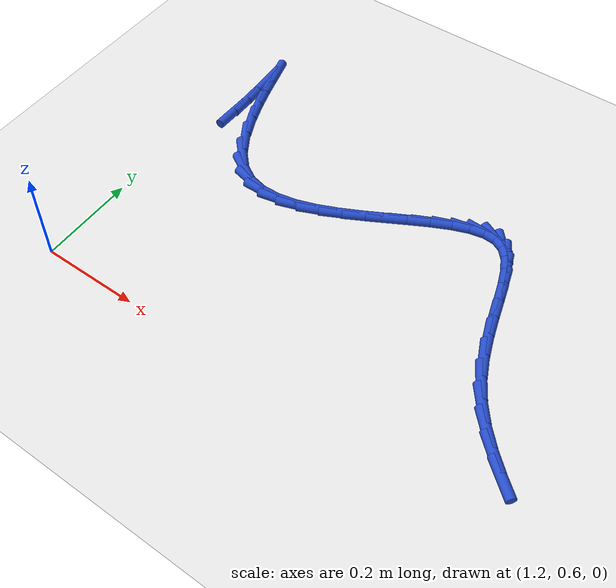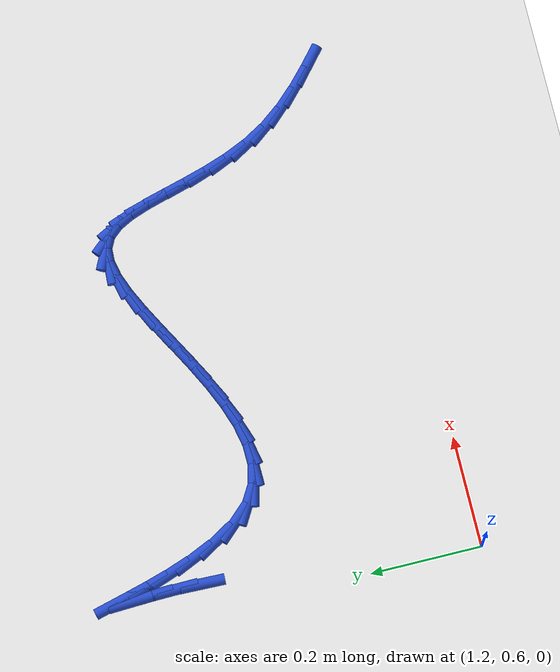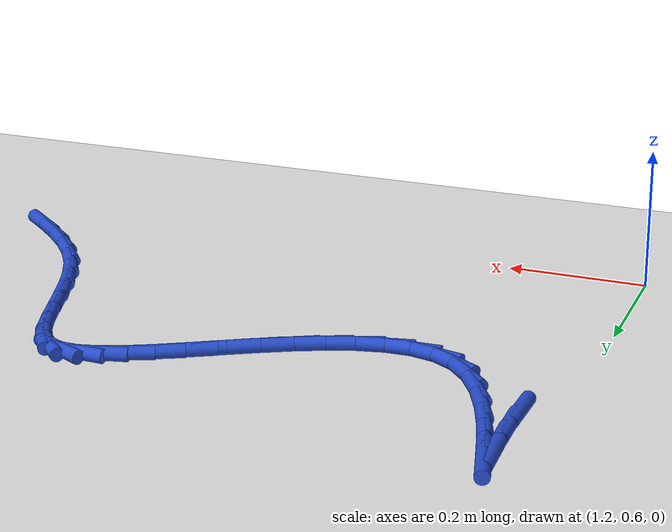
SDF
<sdf version="1.6">
 <world name="default">
  <model name="ground_plane">
   <static>1</static>
   <link name="link">
    <collision name="collision">
     <geometry><plane><normal>0 0 1</normal><size>100 100</size></plane></geometry>
     <surface><friction><ode><mu>100</mu><mu2>50</mu2></ode></friction></surface>
    </collision>
    <visual name="visual">
     <cast_shadows>0</cast_shadows>
     <geometry><plane><normal>0 0 1</normal><size>100 100</size></plane></geometry>
     <material>
      <script><uri>file://media/materials/scripts/gazebo.material</uri><name>Gazebo/WhiteGlow</name></script>
     </material>
    </visual>
   </link>
  </model>
  <model name="line">
   <link name="link_58">
    <pose>1.253192331634363 1.0897509584453566 0.01 0 1.57 1.542110129818234</pose>
    <collision name="collision">
     <geometry><cylinder><radius>0.01</radius><length>0.08</length></cylinder></geometry>
    </collision>
    <visual name="visual">
     <material>
      <script><name>Gazebo/Blue</name><uri>file://media/materials/scripts/gazebo.material</uri></script>
     </material>
     <geometry><cylinder><radius>0.01</radius><length>0.08</length></cylinder></geometry>
    </visual>
   </link>
   <link name="link_59">
    <pose>1.254537779484997 1.136640365782208 0.01 0 1.57 -1.5530833813099516</pose>
    <collision name="collision">
     <geometry><cylinder><radius>0.01</radius><length>0.08</length></cylinder></geometry>
    </collision>
    <visual name="visual">
     <material>
      <script><name>Gazebo/Blue</name><uri>file://media/materials/scripts/gazebo.material</uri></script>
     </material>
     <geometry><cylinder><radius>0.01</radius><length>0.08</length></cylinder></geometry>
    </visual>
   </link>
   <link name="link_60">
    <pose>1.2537441861364476 1.1814386942851323 0.01 0 1.57 -1.5281597320739735</pose>
    <collision name="collision">
     <geometry><cylinder><radius>0.01</radius><length>0.08</length></cylinder></geometry>
    </collision>
    <visual name="visual">
     <material>
      <script><name>Gazebo/Blue</name><uri>file://media/materials/scripts/gazebo.material</uri></script>
     </material>
     <geometry><cylinder><radius>0.01</radius><length>0.08</length></cylinder></geometry>
    </visual>
   </link>
   <link name="link_61">
    <pose>1.252131716028752 1.2192346981134374 0.01 0 1.57 -1.5278907593141284</pose>
    <collision name="collision">
     <geometry><cylinder><radius>0.01</radius><length>0.08</length></cylinder></geometry>
    </collision>
    <visual name="visual">
     <material>
      <script><name>Gazebo/Blue</name><uri>file://media/materials/scripts/gazebo.material</uri></script>
     </material>
     <geometry><cylinder><radius>0.01</radius><length>0.08</length></cylinder></geometry>
    </visual>
   </link>
   <link name="link_64">
    <pose>1.2552029767197268 1.2444233545930647 0.01 0 1.57 -1.3186588763899783</pose>
    <collision name="collision">
     <geometry><cylinder><radius>0.01</radius><length>0.08</length></cylinder></geometry>
    </collision>
    <visual name="visual">
     <material>
      <script><name>Gazebo/Blue</name><uri>file://media/materials/scripts/gazebo.material</uri></script>
     </material>
     <geometry><cylinder><radius>0.01</radius><length>0.08</length></cylinder></geometry>
    </visual>
   </link>
   <link name="link_65">
    <pose>1.2616731956731342 1.2193079929046475 0.01 0 1.57 -1.3120054697427095</pose>
    <collision name="collision">
     <geometry><cylinder><radius>0.01</radius><length>0.08</length></cylinder></geometry>
    </collision>
    <visual name="visual">
     <material>
      <script><name>Gazebo/Blue</name><uri>file://media/materials/scripts/gazebo.material</uri></script>
     </material>
     <geometry><cylinder><radius>0.01</radius><length>0.08</length></cylinder></geometry>
    </visual>
   </link>
   <link name="link_66">
    <pose>1.271281915480273 1.1830113142119165 0.01 0 1.57 -1.2815600569305294</pose>
    <collision name="collision">
     <geometry><cylinder><radius>0.01</radius><length>0.08</length></cylinder></geometry>
    </collision>
    <visual name="visual">
     <material>
      <script><name>Gazebo/Blue</name><uri>file://media/materials/scripts/gazebo.material</uri></script>
     </material>
     <geometry><cylinder><radius>0.01</radius><length>0.08</length></cylinder></geometry>
    </visual>
   </link>
   <link name="link_67">
    <pose>1.284172523448162 1.1396933679463568 0.01 0 1.57 -1.2311695655271155</pose>
    <collision name="collision">
     <geometry><cylinder><radius>0.01</radius><length>0.08</length></cylinder></geometry>
    </collision>
    <visual name="visual">
     <material>
      <script><name>Gazebo/Blue</name><uri>file://media/materials/scripts/gazebo.material</uri></script>
     </material>
     <geometry><cylinder><radius>0.01</radius><length>0.08</length></cylinder></geometry>
    </visual>
   </link>
   <link name="link_68">
    <pose>1.3004884068838212 1.0935142035394507 0.01 0 1.57 -1.1537311726404609</pose>
    <collision name="collision">
     <geometry><cylinder><radius>0.01</radius><length>0.08</length></cylinder></geometry>
    </collision>
    <visual name="visual">
     <material>
      <script><name>Gazebo/Blue</name><uri>file://media/materials/scripts/gazebo.material</uri></script>
     </material>
     <geometry><cylinder><radius>0.01</radius><length>0.08</length></cylinder></geometry>
    </visual>
   </link>
   <link name="link_69">
    <pose>1.320372953094267 1.048633870422683 0.01 0 1.57 -1.031427139022374</pose>
    <collision name="collision">
     <geometry><cylinder><radius>0.01</radius><length>0.08</length></cylinder></geometry>
    </collision>
    <visual name="visual">
     <material>
      <script><name>Gazebo/Blue</name><uri>file://media/materials/scripts/gazebo.material</uri></script>
     </material>
     <geometry><cylinder><radius>0.01</radius><length>0.08</length></cylinder></geometry>
    </visual>
   </link>
   <link name="link_70">
    <pose>1.3439695493865202 1.009212418027537 0.01 0 1.57 -0.827272555788181</pose>
    <collision name="collision">
     <geometry><cylinder><radius>0.01</radius><length>0.08</length></cylinder></geometry>
    </collision>
    <visual name="visual">
     <material>
      <script><name>Gazebo/Blue</name><uri>file://media/materials/scripts/gazebo.material</uri></script>
     </material>
     <geometry><cylinder><radius>0.01</radius><length>0.08</length></cylinder></geometry>
    </visual>
   </link>
   <link name="link_71">
    <pose>1.3714157647301493 0.9793656923565282 0.01 0 1.57 -0.5324765011167155</pose>
    <collision name="collision">
     <geometry><cylinder><radius>0.01</radius><length>0.08</length></cylinder></geometry>
    </collision>
    <visual name="visual">
     <material>
      <script><name>Gazebo/Blue</name><uri>file://media/materials/scripts/gazebo.material</uri></script>
     </material>
     <geometry><cylinder><radius>0.01</radius><length>0.08</length></cylinder></geometry>
    </visual>
   </link>
   <link name="link_72">
    <pose>1.4025601641096337 0.9610139006682872 0.01 0 1.57 -0.2320817622338211</pose>
    <collision name="collision">
     <geometry><cylinder><radius>0.01</radius><length>0.08</length></cylinder></geometry>
    </collision>
    <visual name="visual">
     <material>
      <script><name>Gazebo/Blue</name><uri>file://media/materials/scripts/gazebo.material</uri></script>
     </material>
     <geometry><cylinder><radius>0.01</radius><length>0.08</length></cylinder></geometry>
    </visual>
   </link>
   <link name="link_73">
    <pose>1.4368348671571405 0.9529134061313832 0.01 0 1.57 0.017962697122908416</pose>
    <collision name="collision">
     <geometry><cylinder><radius>0.01</radius><length>0.08</length></cylinder></geometry>
    </collision>
    <visual name="visual">
     <material>
      <script><name>Gazebo/Blue</name><uri>file://media/materials/scripts/gazebo.material</uri></script>
     </material>
     <geometry><cylinder><radius>0.01</radius><length>0.08</length></cylinder></geometry>
    </visual>
   </link>
   <link name="link_74">
    <pose>1.4736396157685836 0.953574589797079 0.01 0 1.57 0.20201681243534686</pose>
    <collision name="collision">
     <geometry><cylinder><radius>0.01</radius><length>0.08</length></cylinder></geometry>
    </collision>
    <visual name="visual">
     <material>
      <script><name>Gazebo/Blue</name><uri>file://media/materials/scripts/gazebo.material</uri></script>
     </material>
     <geometry><cylinder><radius>0.01</radius><length>0.08</length></cylinder></geometry>
    </visual>
   </link>
   <link name="link_75">
    <pose>1.512374151839874 0.9615078327166361 0.01 0 1.57 0.329837909972048</pose>
    <collision name="collision">
     <geometry><cylinder><radius>0.01</radius><length>0.08</length></cylinder></geometry>
    </collision>
    <visual name="visual">
     <material>
      <script><name>Gazebo/Blue</name><uri>file://media/materials/scripts/gazebo.material</uri></script>
     </material>
     <geometry><cylinder><radius>0.01</radius><length>0.08</length></cylinder></geometry>
    </visual>
   </link>
   <link name="link_76">
    <pose>1.552438217266925 0.9752235159413173 0.01 0 1.57 0.41572690695395337</pose>
    <collision name="collision">
     <geometry><cylinder><radius>0.01</radius><length>0.08</length></cylinder></geometry>
    </collision>
    <visual name="visual">
     <material>
      <script><name>Gazebo/Blue</name><uri>file://media/materials/scripts/gazebo.material</uri></script>
     </material>
     <geometry><cylinder><radius>0.01</radius><length>0.08</length></cylinder></geometry>
    </visual>
   </link>
   <link name="link_77">
    <pose>1.59323155394565 0.9932320205223847 0.01 0 1.57 0.47047673224339187</pose>
    <collision name="collision">
     <geometry><cylinder><radius>0.01</radius><length>0.08</length></cylinder></geometry>
    </collision>
    <visual name="visual">
     <material>
      <script><name>Gazebo/Blue</name><uri>file://media/materials/scripts/gazebo.material</uri></script>
     </material>
     <geometry><cylinder><radius>0.01</radius><length>0.08</length></cylinder></geometry>
    </visual>
   </link>
   <link name="link_78">
    <pose>1.6341539037719608 1.0140437275111003 0.01 0 1.57 0.5005091749409764</pose>
    <collision name="collision">
     <geometry><cylinder><radius>0.01</radius><length>0.08</length></cylinder></geometry>
    </collision>
    <visual name="visual">
     <material>
      <script><name>Gazebo/Blue</name><uri>file://media/materials/scripts/gazebo.material</uri></script>
     </material>
     <geometry><cylinder><radius>0.01</radius><length>0.08</length></cylinder></geometry>
    </visual>
   </link>
   <link name="link_79">
    <pose>1.6746050086417705 1.0361690179587266 0.01 0 1.57 0.5084887177179409</pose>
    <collision name="collision">
     <geometry><cylinder><radius>0.01</radius><length>0.08</length></cylinder></geometry>
    </collision>
    <visual name="visual">
     <material>
      <script><name>Gazebo/Blue</name><uri>file://media/materials/scripts/gazebo.material</uri></script>
     </material>
     <geometry><cylinder><radius>0.01</radius><length>0.08</length></cylinder></geometry>
    </visual>
   </link>
   <link name="link_80">
    <pose>1.7139846104509906 1.0581182729165255 0.01 0 1.57 0.49351732082982674</pose>
    <collision name="collision">
     <geometry><cylinder><radius>0.01</radius><length>0.08</length></cylinder></geometry>
    </collision>
    <visual name="visual">
     <material>
      <script><name>Gazebo/Blue</name><uri>file://media/materials/scripts/gazebo.material</uri></script>
     </material>
     <geometry><cylinder><radius>0.01</radius><length>0.08</length></cylinder></geometry>
    </visual>
   </link>
   <link name="link_81">
    <pose>1.7516924510955345 1.0784018734357594 0.01 0 1.57 0.4502487800252181</pose>
    <collision name="collision">
     <geometry><cylinder><radius>0.01</radius><length>0.08</length></cylinder></geometry>
    </collision>
    <visual name="visual">
     <material>
      <script><name>Gazebo/Blue</name><uri>file://media/materials/scripts/gazebo.material</uri></script>
     </material>
     <geometry><cylinder><radius>0.01</radius><length>0.08</length></cylinder></geometry>
    </visual>
   </link>
   <link name="link_82">
    <pose>1.787128272471315 1.0955302005676908 0.01 0 1.57 0.366076407434139</pose>
    <collision name="collision">
     <geometry><cylinder><radius>0.01</radius><length>0.08</length></cylinder></geometry>
    </collision>
    <visual name="visual">
     <material>
      <script><name>Gazebo/Blue</name><uri>file://media/materials/scripts/gazebo.material</uri></script>
     </material>
     <geometry><cylinder><radius>0.01</radius><length>0.08</length></cylinder></geometry>
    </visual>
   </link>
   <link name="link_83">
    <pose>1.8196918164742435 1.1080136353635812 0.01 0 1.57 0.21487427836237946</pose>
    <collision name="collision">
     <geometry><cylinder><radius>0.01</radius><length>0.08</length></cylinder></geometry>
    </collision>
    <visual name="visual">
     <material>
      <script><name>Gazebo/Blue</name><uri>file://media/materials/scripts/gazebo.material</uri></script>
     </material>
     <geometry><cylinder><radius>0.01</radius><length>0.08</length></cylinder></geometry>
    </visual>
   </link>
   <link name="link_84">
    <pose>1.8487828250002334 1.1143625588746935 0.01 0 1.57 -0.05092705816915673</pose>
    <collision name="collision">
     <geometry><cylinder><radius>0.01</radius><length>0.08</length></cylinder></geometry>
    </collision>
    <visual name="visual">
     <material>
      <script><name>Gazebo/Blue</name><uri>file://media/materials/scripts/gazebo.material</uri></script>
     </material>
     <geometry><cylinder><radius>0.01</radius><length>0.08</length></cylinder></geometry>
    </visual>
   </link>
   <link name="link_85">
    <pose>1.873801039945198 1.1130873521522895 0.01 0 1.57 -0.46443987880889465</pose>
    <collision name="collision">
     <geometry><cylinder><radius>0.01</radius><length>0.08</length></cylinder></geometry>
    </collision>
    <visual name="visual">
     <material>
      <script><name>Gazebo/Blue</name><uri>file://media/materials/scripts/gazebo.material</uri></script>
     </material>
     <geometry><cylinder><radius>0.01</radius><length>0.08</length></cylinder></geometry>
    </visual>
   </link>
   <link name="link_86">
    <pose>1.8942353979044115 1.10284992824265 0.01 0 1.57 -0.857843746037428</pose>
    <collision name="collision">
     <geometry><cylinder><radius>0.01</radius><length>0.08</length></cylinder></geometry>
    </collision>
    <visual name="visual">
     <material>
      <script><name>Gazebo/Blue</name><uri>file://media/materials/scripts/gazebo.material</uri></script>
     </material>
     <geometry><cylinder><radius>0.01</radius><length>0.08</length></cylinder></geometry>
    </visual>
   </link>
   <link name="link_87">
    <pose>1.9105546033114136 1.083976718109 0.01 0 1.57 -1.1009814788669952</pose>
    <collision name="collision">
     <geometry><cylinder><radius>0.01</radius><length>0.08</length></cylinder></geometry>
    </collision>
    <visual name="visual">
     <material>
      <script><name>Gazebo/Blue</name><uri>file://media/materials/scripts/gazebo.material</uri></script>
     </material>
     <geometry><cylinder><radius>0.01</radius><length>0.08</length></cylinder></geometry>
    </visual>
   </link>
   <link name="link_88">
    <pose>1.9238333621775472 1.0578236828180854 0.01 0 1.57 -1.2313334530548181</pose>
    <collision name="collision">
     <geometry><cylinder><radius>0.01</radius><length>0.08</length></cylinder></geometry>
    </collision>
    <visual name="visual">
     <material>
      <script><name>Gazebo/Blue</name><uri>file://media/materials/scripts/gazebo.material</uri></script>
     </material>
     <geometry><cylinder><radius>0.01</radius><length>0.08</length></cylinder></geometry>
    </visual>
   </link>
   <link name="link_89">
    <pose>1.9351553698493467 1.025762055329546 0.01 0 1.57 -1.2926962799103254</pose>
    <collision name="collision">
     <geometry><cylinder><radius>0.01</radius><length>0.08</length></cylinder></geometry>
    </collision>
    <visual name="visual">
     <material>
      <script><name>Gazebo/Blue</name><uri>file://media/materials/scripts/gazebo.material</uri></script>
     </material>
     <geometry><cylinder><radius>0.01</radius><length>0.08</length></cylinder></geometry>
    </visual>
   </link>
   <link name="link_90">
    <pose>1.945604321673347 0.9891630686030212 0.01 0 1.57 -1.3088899173505402</pose>
    <collision name="collision">
     <geometry><cylinder><radius>0.01</radius><length>0.08</length></cylinder></geometry>
    </collision>
    <visual name="visual">
     <material>
      <script><name>Gazebo/Blue</name><uri>file://media/materials/scripts/gazebo.material</uri></script>
     </material>
     <geometry><cylinder><radius>0.01</radius><length>0.08</length></cylinder></geometry>
    </visual>
   </link>
   <link name="link_91">
    <pose>1.9562639129960817 0.9493979555981514 0.01 0 1.57 -1.2907259544818004</pose>
    <collision name="collision">
     <geometry><cylinder><radius>0.01</radius><length>0.08</length></cylinder></geometry>
    </collision>
    <visual name="visual">
     <material>
      <script><name>Gazebo/Blue</name><uri>file://media/materials/scripts/gazebo.material</uri></script>
     </material>
     <geometry><cylinder><radius>0.01</radius><length>0.08</length></cylinder></geometry>
    </visual>
   </link>
   <link name="link_92">
    <pose>1.9682178391640852 0.9078379492745753 0.01 0 1.57 -1.2418304637298303</pose>
    <collision name="collision">
     <geometry><cylinder><radius>0.01</radius><length>0.08</length></cylinder></geometry>
    </collision>
    <visual name="visual">
     <material>
      <script><name>Gazebo/Blue</name><uri>file://media/materials/scripts/gazebo.material</uri></script>
     </material>
     <geometry><cylinder><radius>0.01</radius><length>0.08</length></cylinder></geometry>
    </visual>
   </link>
   <link name="link_93">
    <pose>1.9825497955238913 0.8658542825919335 0.01 0 1.57 -1.1616551596937343</pose>
    <collision name="collision">
     <geometry><cylinder><radius>0.01</radius><length>0.08</length></cylinder></geometry>
    </collision>
    <visual name="visual">
     <material>
      <script><name>Gazebo/Blue</name><uri>file://media/materials/scripts/gazebo.material</uri></script>
     </material>
     <geometry><cylinder><radius>0.01</radius><length>0.08</length></cylinder></geometry>
    </visual>
   </link>
   <link name="link_94">
    <pose>2.0003434774220357 0.8248181885098647 0.01 0 1.57 -1.0477465913153923</pose>
    <collision name="collision">
     <geometry><cylinder><radius>0.01</radius><length>0.08</length></cylinder></geometry>
    </collision>
    <visual name="visual">
     <material>
      <script><name>Gazebo/Blue</name><uri>file://media/materials/scripts/gazebo.material</uri></script>
     </material>
     <geometry><cylinder><radius>0.01</radius><length>0.08</length></cylinder></geometry>
    </visual>
   </link>
   <link name="link_95">
    <pose>2.022672502177354 0.7860940983456913 0.01 0 1.57 -0.9211646396476697</pose>
    <collision name="collision">
     <geometry><cylinder><radius>0.01</radius><length>0.08</length></cylinder></geometry>
    </collision>
    <visual name="visual">
     <material>
      <script><name>Gazebo/Blue</name><uri>file://media/materials/scripts/gazebo.material</uri></script>
     </material>
     <geometry><cylinder><radius>0.01</radius><length>0.08</length></cylinder></geometry>
    </visual>
   </link>
   <link name="link_96">
    <pose>2.0497411847478006 0.7504597528555631 0.01 0 1.57 -0.8219046321156324</pose>
    <collision name="collision">
     <geometry><cylinder><radius>0.01</radius><length>0.08</length></cylinder></geometry>
    </collision>
    <visual name="visual">
     <material>
      <script><name>Gazebo/Blue</name><uri>file://media/materials/scripts/gazebo.material</uri></script>
     </material>
     <geometry><cylinder><radius>0.01</radius><length>0.08</length></cylinder></geometry>
    </visual>
   </link>
   <link name="link_97">
    <pose>2.080227139712246 0.7176625255236134 0.01 0 1.57 -0.7517996957097852</pose>
    <collision name="collision">
     <geometry><cylinder><radius>0.01</radius><length>0.08</length></cylinder></geometry>
    </collision>
    <visual name="visual">
     <material>
      <script><name>Gazebo/Blue</name><uri>file://media/materials/scripts/gazebo.material</uri></script>
     </material>
     <geometry><cylinder><radius>0.01</radius><length>0.08</length></cylinder></geometry>
    </visual>
   </link>
   <link name="link_98">
    <pose>2.112653204910109 0.6873453312977831 0.01 0 1.57 -0.7086904792184082</pose>
    <collision name="collision">
     <geometry><cylinder><radius>0.01</radius><length>0.08</length></cylinder></geometry>
    </collision>
    <visual name="visual">
     <material>
      <script><name>Gazebo/Blue</name><uri>file://media/materials/scripts/gazebo.material</uri></script>
     </material>
     <geometry><cylinder><radius>0.01</radius><length>0.08</length></cylinder></geometry>
    </visual>
   </link>
  </model>
 </world>
</sdf>
